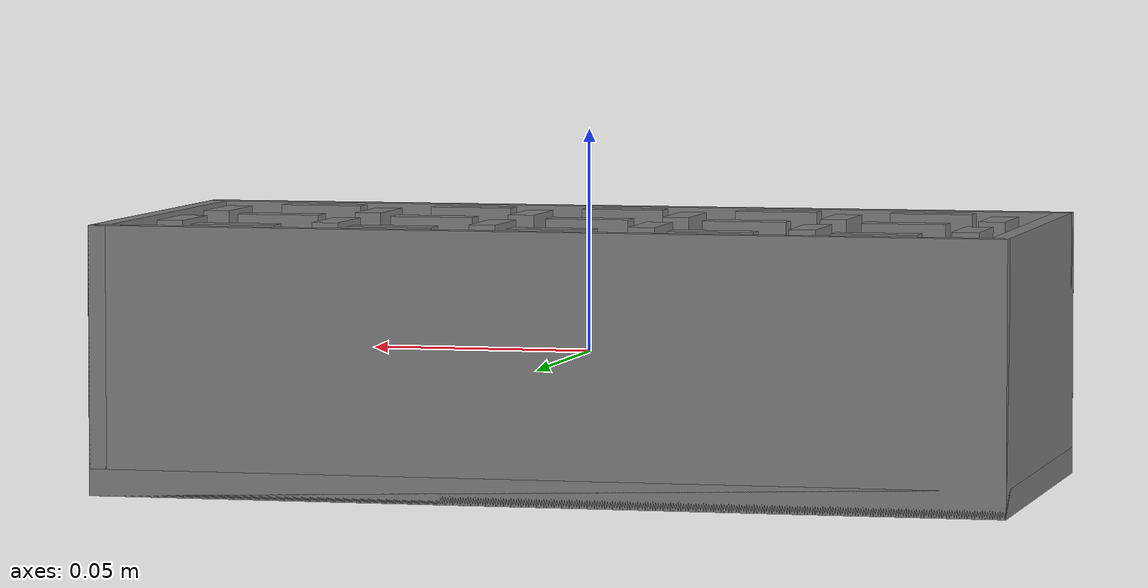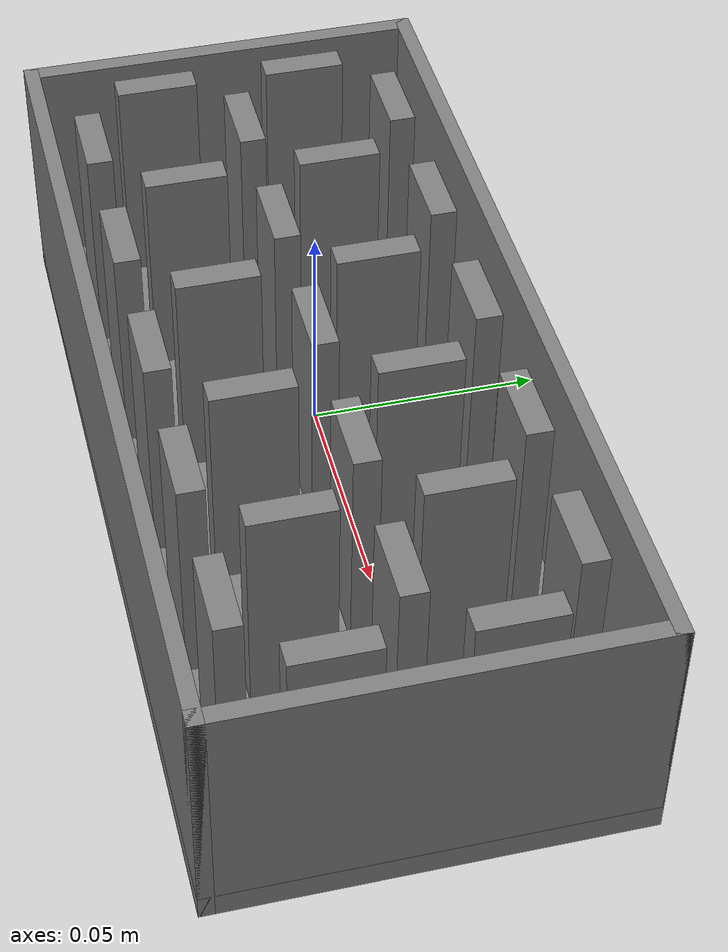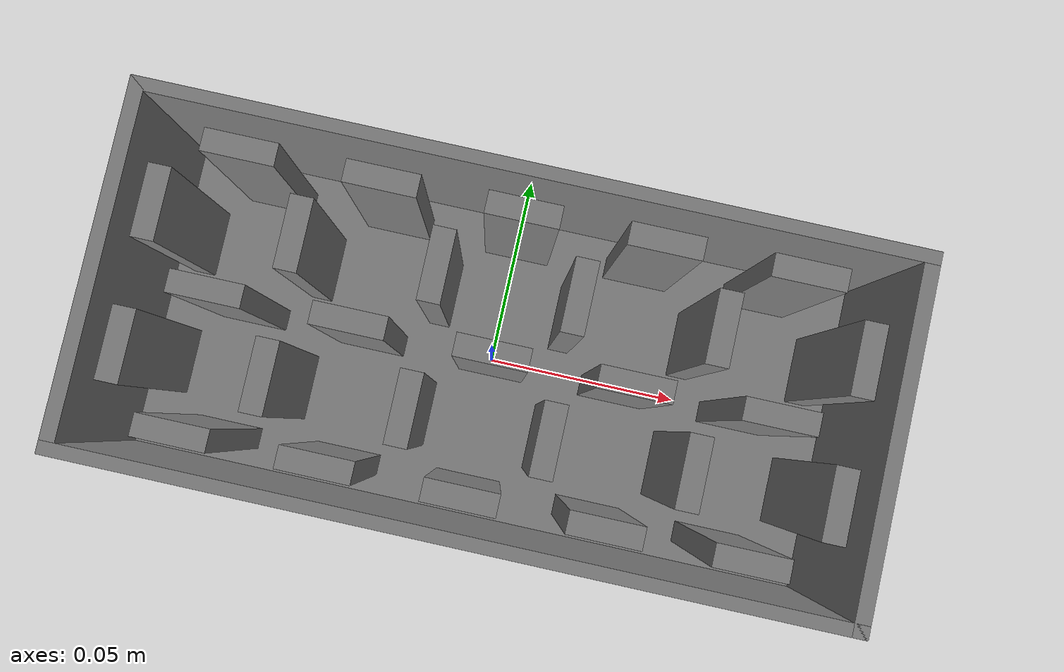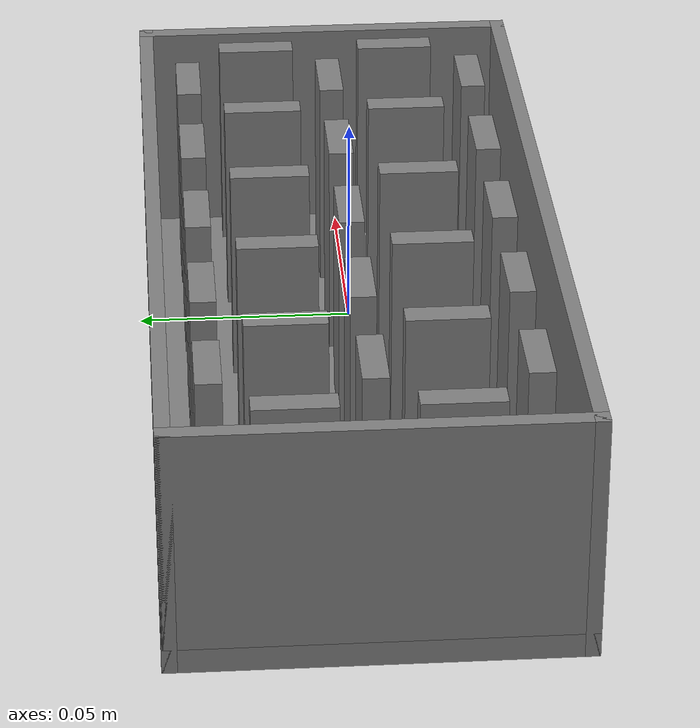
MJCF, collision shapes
<mujoco model="centrifuge_10slot">
  <compiler angle="radian" meshdir="../../assets/"/>

  <asset>
    <mesh name="centrifuge_10slot-visual_pillars_visual" file="rack/centrifuge_10slot_vis/pillars_visual.obj" scale="0.001 0.001 0.001"/>
    <mesh name="centrifuge_10slot-visual_lower_plane_visual" file="rack/centrifuge_10slot_vis/lower_plane_visual.obj" scale="0.001 0.001 0.001"/>
    <mesh name="centrifuge_10slot-visual_upper_plane_visual" file="rack/centrifuge_10slot_vis/upper_plane_visual.obj" scale="0.001 0.001 0.001"/>

    <material name="centrifuge_10slot" rgba="0.3 0.4 0.6 1"/>
  </asset>

  <worldbody>
    <body name="centrifuge_10slot">
      <site name="centrifuge_10slot-15ml" pos="-0.09 0.036 -0.024" quat="1 0 0 -1" size="0.005" rgba="1 0 0 1" group="3" user="2 3 0.036 6 0.036 0.06"/>
      <site name="centrifuge_10slot-50ml" pos="-0.072 0.018 -0.024" quat="1 0 0 -1" size="0.005" rgba="1 0 0 1" group="3" user="2 2 0.036 5 0.036 0.06"/>
      <geom size="0.1025 0.048 0.003" pos="0 0 -0.027" type="box" group="3"/>
      <geom size="0.1025 0.00175 0.03" pos="0 0.04625 0" type="box" group="3"/>
      <geom size="0.1025 0.00175 0.03" pos="0 -0.04625 0" type="box" group="3"/>
      <geom size="0.002 0.048 0.03" pos="0.1005 0 0" type="box" group="3"/>
      <geom size="0.002 0.048 0.03" pos="-0.1005 0 0" type="box" group="3"/>
      <geom type="mesh" contype="0" conaffinity="0" group="2" mesh="centrifuge_10slot-visual_upper_plane_visual" material="centrifuge_10slot"/>
      <geom type="mesh" contype="0" conaffinity="0" group="2" mesh="centrifuge_10slot-visual_lower_plane_visual" material="centrifuge_10slot"/>
      <geom type="mesh" contype="0" conaffinity="0" group="2" mesh="centrifuge_10slot-visual_pillars_visual" material="centrifuge_10slot"/>
      <frame>
        <frame>
          <geom size="0.003 0.0095 0.03" pos="-0.09 -0.018 0" type="box" group="3"/>
        </frame>
        <frame>
          <geom size="0.003 0.0095 0.03" pos="-0.054 -0.018 0" type="box" group="3"/>
        </frame>
        <frame>
          <geom size="0.003 0.0095 0.03" pos="-0.018 -0.018 0" type="box" group="3"/>
        </frame>
        <frame>
          <geom size="0.003 0.0095 0.03" pos="0.018 -0.018 0" type="box" group="3"/>
        </frame>
        <frame>
          <geom size="0.003 0.0095 0.03" pos="0.054 -0.018 0" type="box" group="3"/>
        </frame>
        <frame>
          <geom size="0.003 0.0095 0.03" pos="0.09 -0.018 0" type="box" group="3"/>
        </frame>
      </frame>
      <frame>
        <frame>
          <geom size="0.003 0.0095 0.03" pos="-0.09 0.018 0" type="box" group="3"/>
        </frame>
        <frame>
          <geom size="0.003 0.0095 0.03" pos="-0.054 0.018 0" type="box" group="3"/>
        </frame>
        <frame>
          <geom size="0.003 0.0095 0.03" pos="-0.018 0.018 0" type="box" group="3"/>
        </frame>
        <frame>
          <geom size="0.003 0.0095 0.03" pos="0.018 0.018 0" type="box" group="3"/>
        </frame>
        <frame>
          <geom size="0.003 0.0095 0.03" pos="0.054 0.018 0" type="box" group="3"/>
        </frame>
        <frame>
          <geom size="0.003 0.0095 0.03" pos="0.09 0.018 0" type="box" group="3"/>
        </frame>
      </frame>
      <frame>
        <frame>
          <geom size="0.0095 0.003 0.03" pos="-0.072 -0.036 0" type="box" group="3"/>
        </frame>
        <frame>
          <geom size="0.0095 0.003 0.03" pos="-0.036 -0.036 0" type="box" group="3"/>
        </frame>
        <frame>
          <geom size="0.0095 0.003 0.03" pos="0 -0.036 0" type="box" group="3"/>
        </frame>
        <frame>
          <geom size="0.0095 0.003 0.03" pos="0.036 -0.036 0" type="box" group="3"/>
        </frame>
        <frame>
          <geom size="0.0095 0.003 0.03" pos="0.072 -0.036 0" type="box" group="3"/>
        </frame>
      </frame>
      <frame>
        <frame>
          <geom size="0.0095 0.003 0.03" pos="-0.072 0 0" type="box" group="3"/>
        </frame>
        <frame>
          <geom size="0.0095 0.003 0.03" pos="-0.036 0 0" type="box" group="3"/>
        </frame>
        <frame>
          <geom size="0.0095 0.003 0.03" type="box" group="3"/>
        </frame>
        <frame>
          <geom size="0.0095 0.003 0.03" pos="0.036 0 0" type="box" group="3"/>
        </frame>
        <frame>
          <geom size="0.0095 0.003 0.03" pos="0.072 0 0" type="box" group="3"/>
        </frame>
      </frame>
      <frame>
        <frame>
          <geom size="0.0095 0.003 0.03" pos="-0.072 0.036 0" type="box" group="3"/>
        </frame>
        <frame>
          <geom size="0.0095 0.003 0.03" pos="-0.036 0.036 0" type="box" group="3"/>
        </frame>
        <frame>
          <geom size="0.0095 0.003 0.03" pos="0 0.036 0" type="box" group="3"/>
        </frame>
        <frame>
          <geom size="0.0095 0.003 0.03" pos="0.036 0.036 0" type="box" group="3"/>
        </frame>
        <frame>
          <geom size="0.0095 0.003 0.03" pos="0.072 0.036 0" type="box" group="3"/>
        </frame>
      </frame>
    </body>
  </worldbody>
</mujoco>
